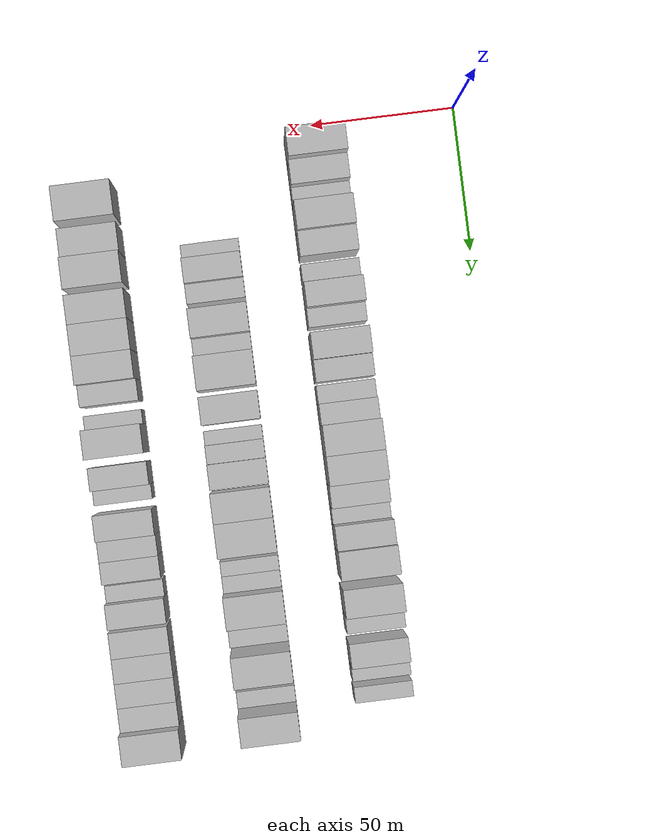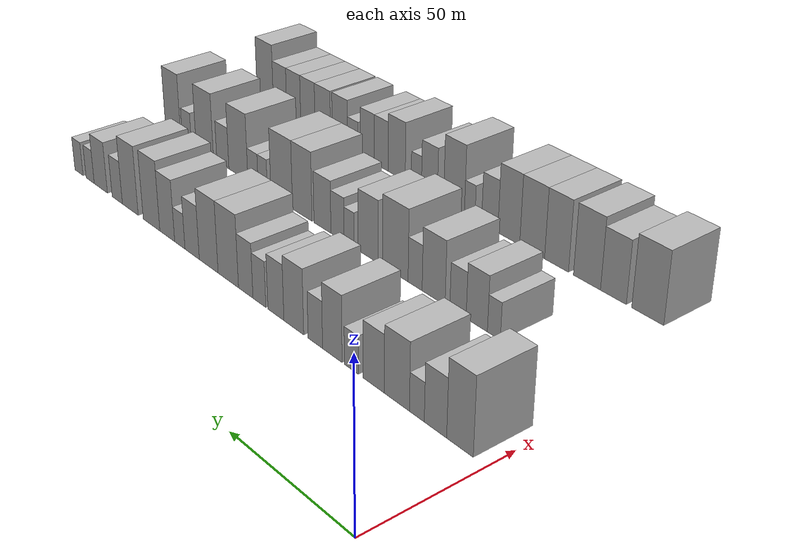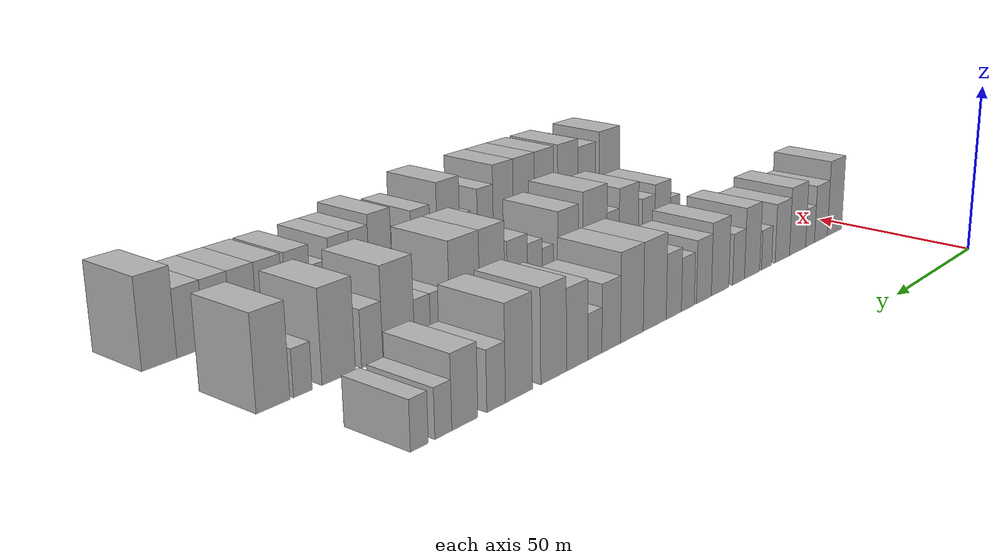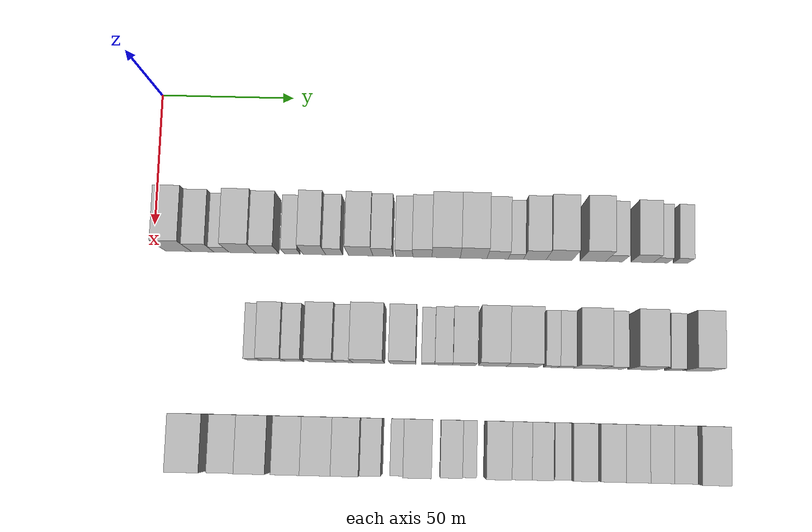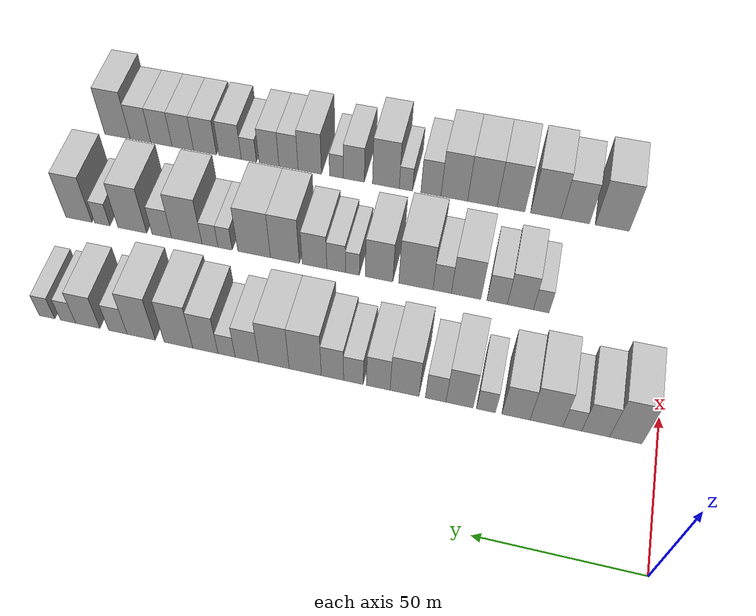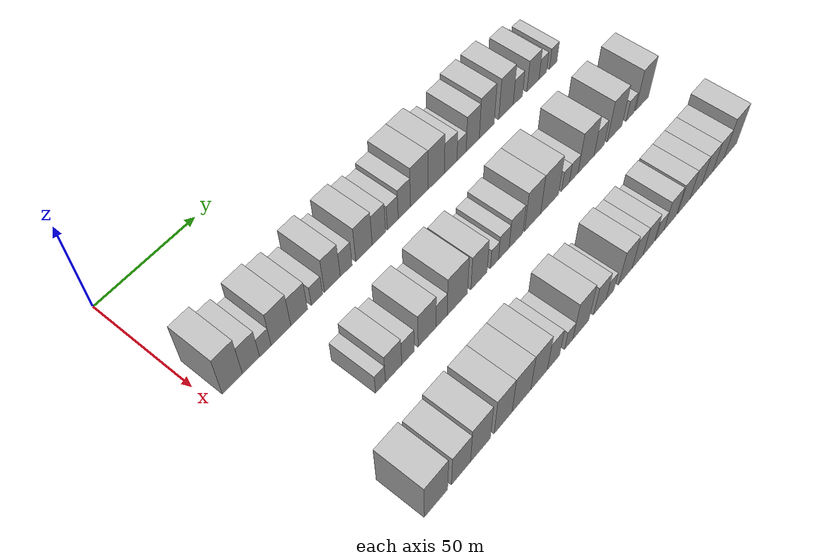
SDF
<sdf version="1.6">
 <world name="default">
  <model name="building_45">
   <static>1</static>
   <pose>50.0000 9.4285 0 0.000000 0.000000 0.000000</pose>
   <link name="link">
    <pose>0 0 12.00 0 0 0</pose>
    <collision name="collision"><geometry><box><size>20.0000 9.6860 24.0000</size></box></geometry></collision>
    <visual name="visual">
     <cast_shadows>0</cast_shadows>
     <geometry><box><size>20.0000 9.6860 24.0000</size></box></geometry>
     <material>
      <script>
       <uri>model://HANNAS_wall/materials/scripts</uri>
       <uri>model://HANNAS_wall/materials/textures</uri>
       <name>vrc/HANNAS_wall</name>
      </script>
     </material>
    </visual>
   </link>
  </model>
  <model name="building_46">
   <static>1</static>
   <pose>50.0000 18.4736 0 0.000000 0.000000 0.000000</pose>
   <link name="link">
    <pose>0 0 9.00 0 0 0</pose>
    <collision name="collision"><geometry><box><size>20.0000 8.4042 18.0000</size></box></geometry></collision>
    <visual name="visual">
     <cast_shadows>0</cast_shadows>
     <geometry><box><size>20.0000 8.4042 18.0000</size></box></geometry>
     <material>
      <script>
       <uri>model://HANNAS_wall/materials/scripts</uri>
       <uri>model://HANNAS_wall/materials/textures</uri>
       <name>vrc/HANNAS_wall</name>
      </script>
     </material>
    </visual>
   </link>
  </model>
  <model name="building_47">
   <static>1</static>
   <pose>50.0000 25.5495 0 0.000000 0.000000 0.000000</pose>
   <link name="link">
    <pose>0 0 6.00 0 0 0</pose>
    <collision name="collision"><geometry><box><size>20.0000 5.7476 12.0000</size></box></geometry></collision>
    <visual name="visual">
     <cast_shadows>0</cast_shadows>
     <geometry><box><size>20.0000 5.7476 12.0000</size></box></geometry>
     <material>
      <script>
       <uri>model://HANNAS_wall/materials/scripts</uri>
       <uri>model://HANNAS_wall/materials/textures</uri>
       <name>vrc/HANNAS_wall</name>
      </script>
     </material>
    </visual>
   </link>
  </model>
  <model name="building_48">
   <static>1</static>
   <pose>50.0000 33.4192 0 0.000000 0.000000 0.000000</pose>
   <link name="link">
    <pose>0 0 10.50 0 0 0</pose>
    <collision name="collision"><geometry><box><size>20.0000 9.9916 21.0000</size></box></geometry></collision>
    <visual name="visual">
     <cast_shadows>0</cast_shadows>
     <geometry><box><size>20.0000 9.9916 21.0000</size></box></geometry>
     <material>
      <script>
       <uri>model://HANNAS_wall/materials/scripts</uri>
       <uri>model://HANNAS_wall/materials/textures</uri>
       <name>vrc/HANNAS_wall</name>
      </script>
     </material>
    </visual>
   </link>
  </model>
  <model name="building_49">
   <static>1</static>
   <pose>50.0000 42.7429 0 0.000000 0.000000 0.000000</pose>
   <link name="link">
    <pose>0 0 9.00 0 0 0</pose>
    <collision name="collision"><geometry><box><size>20.0000 8.6559 18.0000</size></box></geometry></collision>
    <visual name="visual">
     <cast_shadows>0</cast_shadows>
     <geometry><box><size>20.0000 8.6559 18.0000</size></box></geometry>
     <material>
      <script>
       <uri>model://HANNAS_wall/materials/scripts</uri>
       <uri>model://HANNAS_wall/materials/textures</uri>
       <name>vrc/HANNAS_wall</name>
      </script>
     </material>
    </visual>
   </link>
  </model>
  <model name="building_50">
   <static>1</static>
   <pose>50.0000 52.0302 0 0.000000 0.000000 0.000000</pose>
   <link name="link">
    <pose>0 0 6.00 0 0 0</pose>
    <collision name="collision"><geometry><box><size>20.0000 5.9188 12.0000</size></box></geometry></collision>
    <visual name="visual">
     <cast_shadows>0</cast_shadows>
     <geometry><box><size>20.0000 5.9188 12.0000</size></box></geometry>
     <material>
      <script>
       <uri>model://HANNAS_wall/materials/scripts</uri>
       <uri>model://HANNAS_wall/materials/textures</uri>
       <name>vrc/HANNAS_wall</name>
      </script>
     </material>
    </visual>
   </link>
  </model>
  <model name="building_51">
   <static>1</static>
   <pose>50.0000 60.2455 0 0.000000 0.000000 0.000000</pose>
   <link name="link">
    <pose>0 0 10.50 0 0 0</pose>
    <collision name="collision"><geometry><box><size>20.0000 8.5118 21.0000</size></box></geometry></collision>
    <visual name="visual">
     <cast_shadows>0</cast_shadows>
     <geometry><box><size>20.0000 8.5118 21.0000</size></box></geometry>
     <material>
      <script>
       <uri>model://HANNAS_wall/materials/scripts</uri>
       <uri>model://HANNAS_wall/materials/textures</uri>
       <name>vrc/HANNAS_wall</name>
      </script>
     </material>
    </visual>
   </link>
  </model>
  <model name="building_52">
   <static>1</static>
   <pose>50.0000 67.7341 0 0.000000 0.000000 0.000000</pose>
   <link name="link">
    <pose>0 0 7.50 0 0 0</pose>
    <collision name="collision"><geometry><box><size>20.0000 6.4653 15.0000</size></box></geometry></collision>
    <visual name="visual">
     <cast_shadows>0</cast_shadows>
     <geometry><box><size>20.0000 6.4653 15.0000</size></box></geometry>
     <material>
      <script>
       <uri>model://HANNAS_wall/materials/scripts</uri>
       <uri>model://HANNAS_wall/materials/textures</uri>
       <name>vrc/HANNAS_wall</name>
      </script>
     </material>
    </visual>
   </link>
  </model>
  <model name="building_53">
   <static>1</static>
   <pose>50.0000 77.5523 0 0.000000 0.000000 0.000000</pose>
   <link name="link">
    <pose>0 0 10.50 0 0 0</pose>
    <collision name="collision"><geometry><box><size>20.0000 9.1711 21.0000</size></box></geometry></collision>
    <visual name="visual">
     <cast_shadows>0</cast_shadows>
     <geometry><box><size>20.0000 9.1711 21.0000</size></box></geometry>
     <material>
      <script>
       <uri>model://HANNAS_wall/materials/scripts</uri>
       <uri>model://HANNAS_wall/materials/textures</uri>
       <name>vrc/HANNAS_wall</name>
      </script>
     </material>
    </visual>
   </link>
  </model>
  <model name="building_54">
   <static>1</static>
   <pose>50.0000 85.9416 0 0.000000 0.000000 0.000000</pose>
   <link name="link">
    <pose>0 0 9.00 0 0 0</pose>
    <collision name="collision"><geometry><box><size>20.0000 7.6076 18.0000</size></box></geometry></collision>
    <visual name="visual">
     <cast_shadows>0</cast_shadows>
     <geometry><box><size>20.0000 7.6076 18.0000</size></box></geometry>
     <material>
      <script>
       <uri>model://HANNAS_wall/materials/scripts</uri>
       <uri>model://HANNAS_wall/materials/textures</uri>
       <name>vrc/HANNAS_wall</name>
      </script>
     </material>
    </visual>
   </link>
  </model>
  <model name="building_55">
   <static>1</static>
   <pose>50.0000 93.8959 0 0.000000 0.000000 0.000000</pose>
   <link name="link">
    <pose>0 0 7.50 0 0 0</pose>
    <collision name="collision"><geometry><box><size>20.0000 6.3009 15.0000</size></box></geometry></collision>
    <visual name="visual">
     <cast_shadows>0</cast_shadows>
     <geometry><box><size>20.0000 6.3009 15.0000</size></box></geometry>
     <material>
      <script>
       <uri>model://HANNAS_wall/materials/scripts</uri>
       <uri>model://HANNAS_wall/materials/textures</uri>
       <name>vrc/HANNAS_wall</name>
      </script>
     </material>
    </visual>
   </link>
  </model>
  <model name="building_56">
   <static>1</static>
   <pose>50.0000 100.6572 0 0.000000 0.000000 0.000000</pose>
   <link name="link">
    <pose>0 0 9.00 0 0 0</pose>
    <collision name="collision"><geometry><box><size>20.0000 7.2218 18.0000</size></box></geometry></collision>
    <visual name="visual">
     <cast_shadows>0</cast_shadows>
     <geometry><box><size>20.0000 7.2218 18.0000</size></box></geometry>
     <material>
      <script>
       <uri>model://HANNAS_wall/materials/scripts</uri>
       <uri>model://HANNAS_wall/materials/textures</uri>
       <name>vrc/HANNAS_wall</name>
      </script>
     </material>
    </visual>
   </link>
  </model>
  <model name="building_57">
   <static>1</static>
   <pose>50.0000 109.5075 0 0.000000 0.000000 0.000000</pose>
   <link name="link">
    <pose>0 0 12.00 0 0 0</pose>
    <collision name="collision"><geometry><box><size>20.0000 10.4787 24.0000</size></box></geometry></collision>
    <visual name="visual">
     <cast_shadows>0</cast_shadows>
     <geometry><box><size>20.0000 10.4787 24.0000</size></box></geometry>
     <material>
      <script>
       <uri>model://HANNAS_wall/materials/scripts</uri>
       <uri>model://HANNAS_wall/materials/textures</uri>
       <name>vrc/HANNAS_wall</name>
      </script>
     </material>
    </visual>
   </link>
  </model>
  <model name="building_58">
   <static>1</static>
   <pose>50.0000 119.7320 0 0.000000 0.000000 0.000000</pose>
   <link name="link">
    <pose>0 0 12.00 0 0 0</pose>
    <collision name="collision"><geometry><box><size>20.0000 9.9702 24.0000</size></box></geometry></collision>
    <visual name="visual">
     <cast_shadows>0</cast_shadows>
     <geometry><box><size>20.0000 9.9702 24.0000</size></box></geometry>
     <material>
      <script>
       <uri>model://HANNAS_wall/materials/scripts</uri>
       <uri>model://HANNAS_wall/materials/textures</uri>
       <name>vrc/HANNAS_wall</name>
      </script>
     </material>
    </visual>
   </link>
  </model>
  <model name="building_59">
   <static>1</static>
   <pose>50.0000 128.6351 0 0.000000 0.000000 0.000000</pose>
   <link name="link">
    <pose>0 0 9.00 0 0 0</pose>
    <collision name="collision"><geometry><box><size>20.0000 7.8361 18.0000</size></box></geometry></collision>
    <visual name="visual">
     <cast_shadows>0</cast_shadows>
     <geometry><box><size>20.0000 7.8361 18.0000</size></box></geometry>
     <material>
      <script>
       <uri>model://HANNAS_wall/materials/scripts</uri>
       <uri>model://HANNAS_wall/materials/textures</uri>
       <name>vrc/HANNAS_wall</name>
      </script>
     </material>
    </visual>
   </link>
  </model>
  <model name="building_60">
   <static>1</static>
   <pose>50.0000 135.4179 0 0.000000 0.000000 0.000000</pose>
   <link name="link">
    <pose>0 0 6.00 0 0 0</pose>
    <collision name="collision"><geometry><box><size>20.0000 5.7295 12.0000</size></box></geometry></collision>
    <visual name="visual">
     <cast_shadows>0</cast_shadows>
     <geometry><box><size>20.0000 5.7295 12.0000</size></box></geometry>
     <material>
      <script>
       <uri>model://HANNAS_wall/materials/scripts</uri>
       <uri>model://HANNAS_wall/materials/textures</uri>
       <name>vrc/HANNAS_wall</name>
      </script>
     </material>
    </visual>
   </link>
  </model>
  <model name="building_61">
   <static>1</static>
   <pose>50.0000 142.5011 0 0.000000 0.000000 0.000000</pose>
   <link name="link">
    <pose>0 0 10.50 0 0 0</pose>
    <collision name="collision"><geometry><box><size>20.0000 8.4368 21.0000</size></box></geometry></collision>
    <visual name="visual">
     <cast_shadows>0</cast_shadows>
     <geometry><box><size>20.0000 8.4368 21.0000</size></box></geometry>
     <material>
      <script>
       <uri>model://HANNAS_wall/materials/scripts</uri>
       <uri>model://HANNAS_wall/materials/textures</uri>
       <name>vrc/HANNAS_wall</name>
      </script>
     </material>
    </visual>
   </link>
  </model>
  <model name="building_62">
   <static>1</static>
   <pose>50.0000 151.5819 0 0.000000 0.000000 0.000000</pose>
   <link name="link">
    <pose>0 0 12.00 0 0 0</pose>
    <collision name="collision"><geometry><box><size>20.0000 9.7249 24.0000</size></box></geometry></collision>
    <visual name="visual">
     <cast_shadows>0</cast_shadows>
     <geometry><box><size>20.0000 9.7249 24.0000</size></box></geometry>
     <material>
      <script>
       <uri>model://HANNAS_wall/materials/scripts</uri>
       <uri>model://HANNAS_wall/materials/textures</uri>
       <name>vrc/HANNAS_wall</name>
      </script>
     </material>
    </visual>
   </link>
  </model>
  <model name="building_63">
   <static>1</static>
   <pose>50.0000 164.2537 0 0.000000 0.000000 0.000000</pose>
   <link name="link">
    <pose>0 0 12.00 0 0 0</pose>
    <collision name="collision"><geometry><box><size>20.0000 9.6187 24.0000</size></box></geometry></collision>
    <visual name="visual">
     <cast_shadows>0</cast_shadows>
     <geometry><box><size>20.0000 9.6187 24.0000</size></box></geometry>
     <material>
      <script>
       <uri>model://HANNAS_wall/materials/scripts</uri>
       <uri>model://HANNAS_wall/materials/textures</uri>
       <name>vrc/HANNAS_wall</name>
      </script>
     </material>
    </visual>
   </link>
  </model>
  <model name="building_64">
   <static>1</static>
   <pose>50.0000 172.2444 0 0.000000 0.000000 0.000000</pose>
   <link name="link">
    <pose>0 0 7.50 0 0 0</pose>
    <collision name="collision"><geometry><box><size>20.0000 6.3627 15.0000</size></box></geometry></collision>
    <visual name="visual">
     <cast_shadows>0</cast_shadows>
     <geometry><box><size>20.0000 6.3627 15.0000</size></box></geometry>
     <material>
      <script>
       <uri>model://HANNAS_wall/materials/scripts</uri>
       <uri>model://HANNAS_wall/materials/textures</uri>
       <name>vrc/HANNAS_wall</name>
      </script>
     </material>
    </visual>
   </link>
  </model>
  <model name="building_65">
   <static>1</static>
   <pose>50.0000 182.6394 0 0.000000 0.000000 0.000000</pose>
   <link name="link">
    <pose>0 0 9.00 0 0 0</pose>
    <collision name="collision"><geometry><box><size>20.0000 8.4272 18.0000</size></box></geometry></collision>
    <visual name="visual">
     <cast_shadows>0</cast_shadows>
     <geometry><box><size>20.0000 8.4272 18.0000</size></box></geometry>
     <material>
      <script>
       <uri>model://HANNAS_wall/materials/scripts</uri>
       <uri>model://HANNAS_wall/materials/textures</uri>
       <name>vrc/HANNAS_wall</name>
      </script>
     </material>
    </visual>
   </link>
  </model>
  <model name="building_66">
   <static>1</static>
   <pose>50.0000 189.5086 0 0.000000 0.000000 0.000000</pose>
   <link name="link">
    <pose>0 0 6.00 0 0 0</pose>
    <collision name="collision"><geometry><box><size>20.0000 5.3113 12.0000</size></box></geometry></collision>
    <visual name="visual">
     <cast_shadows>0</cast_shadows>
     <geometry><box><size>20.0000 5.3113 12.0000</size></box></geometry>
     <material>
      <script>
       <uri>model://HANNAS_wall/materials/scripts</uri>
       <uri>model://HANNAS_wall/materials/textures</uri>
       <name>vrc/HANNAS_wall</name>
      </script>
     </material>
    </visual>
   </link>
  </model>
  <model name="building_67">
   <static>1</static>
   <pose>50.0000 196.8593 0 0.000000 0.000000 0.000000</pose>
   <link name="link">
    <pose>0 0 6.00 0 0 0</pose>
    <collision name="collision"><geometry><box><size>20.0000 5.3899 12.0000</size></box></geometry></collision>
    <visual name="visual">
     <cast_shadows>0</cast_shadows>
     <geometry><box><size>20.0000 5.3899 12.0000</size></box></geometry>
     <material>
      <script>
       <uri>model://HANNAS_wall/materials/scripts</uri>
       <uri>model://HANNAS_wall/materials/textures</uri>
       <name>vrc/HANNAS_wall</name>
      </script>
     </material>
    </visual>
   </link>
  </model>
  <model name="building_131">
   <static>1</static>
   <pose>90.0000 39.9791 0 0.000000 0.000000 0.000000</pose>
   <link name="link">
    <pose>0 0 6.00 0 0 0</pose>
    <collision name="collision"><geometry><box><size>20.0000 5.1686 12.0000</size></box></geometry></collision>
    <visual name="visual">
     <cast_shadows>0</cast_shadows>
     <geometry><box><size>20.0000 5.1686 12.0000</size></box></geometry>
     <material>
      <script>
       <uri>model://HANNAS_wall/materials/scripts</uri>
       <uri>model://HANNAS_wall/materials/textures</uri>
       <name>vrc/HANNAS_wall</name>
      </script>
     </material>
    </visual>
   </link>
  </model>
  <model name="building_132">
   <static>1</static>
   <pose>90.0000 46.8802 0 0.000000 0.000000 0.000000</pose>
   <link name="link">
    <pose>0 0 9.00 0 0 0</pose>
    <collision name="collision"><geometry><box><size>20.0000 8.6337 18.0000</size></box></geometry></collision>
    <visual name="visual">
     <cast_shadows>0</cast_shadows>
     <geometry><box><size>20.0000 8.6337 18.0000</size></box></geometry>
     <material>
      <script>
       <uri>model://HANNAS_wall/materials/scripts</uri>
       <uri>model://HANNAS_wall/materials/textures</uri>
       <name>vrc/HANNAS_wall</name>
      </script>
     </material>
    </visual>
   </link>
  </model>
  <model name="building_133">
   <static>1</static>
   <pose>90.0000 54.6035 0 0.000000 0.000000 0.000000</pose>
   <link name="link">
    <pose>0 0 7.50 0 0 0</pose>
    <collision name="collision"><geometry><box><size>20.0000 6.8129 15.0000</size></box></geometry></collision>
    <visual name="visual">
     <cast_shadows>0</cast_shadows>
     <geometry><box><size>20.0000 6.8129 15.0000</size></box></geometry>
     <material>
      <script>
       <uri>model://HANNAS_wall/materials/scripts</uri>
       <uri>model://HANNAS_wall/materials/textures</uri>
       <name>vrc/HANNAS_wall</name>
      </script>
     </material>
    </visual>
   </link>
  </model>
  <model name="building_134">
   <static>1</static>
   <pose>90.0000 64.9689 0 0.000000 0.000000 0.000000</pose>
   <link name="link">
    <pose>0 0 10.50 0 0 0</pose>
    <collision name="collision"><geometry><box><size>20.0000 9.9180 21.0000</size></box></geometry></collision>
    <visual name="visual">
     <cast_shadows>0</cast_shadows>
     <geometry><box><size>20.0000 9.9180 21.0000</size></box></geometry>
     <material>
      <script>
       <uri>model://HANNAS_wall/materials/scripts</uri>
       <uri>model://HANNAS_wall/materials/textures</uri>
       <name>vrc/HANNAS_wall</name>
      </script>
     </material>
    </visual>
   </link>
  </model>
  <model name="building_135">
   <static>1</static>
   <pose>90.0000 73.0386 0 0.000000 0.000000 0.000000</pose>
   <link name="link">
    <pose>0 0 7.50 0 0 0</pose>
    <collision name="collision"><geometry><box><size>20.0000 6.2214 15.0000</size></box></geometry></collision>
    <visual name="visual">
     <cast_shadows>0</cast_shadows>
     <geometry><box><size>20.0000 6.2214 15.0000</size></box></geometry>
     <material>
      <script>
       <uri>model://HANNAS_wall/materials/scripts</uri>
       <uri>model://HANNAS_wall/materials/textures</uri>
       <name>vrc/HANNAS_wall</name>
      </script>
     </material>
    </visual>
   </link>
  </model>
  <model name="building_136">
   <static>1</static>
   <pose>90.0000 81.9884 0 0.000000 0.000000 0.000000</pose>
   <link name="link">
    <pose>0 0 12.00 0 0 0</pose>
    <collision name="collision"><geometry><box><size>20.0000 11.6782 24.0000</size></box></geometry></collision>
    <visual name="visual">
     <cast_shadows>0</cast_shadows>
     <geometry><box><size>20.0000 11.6782 24.0000</size></box></geometry>
     <material>
      <script>
       <uri>model://HANNAS_wall/materials/scripts</uri>
       <uri>model://HANNAS_wall/materials/textures</uri>
       <name>vrc/HANNAS_wall</name>
      </script>
     </material>
    </visual>
   </link>
  </model>
  <model name="building_137">
   <static>1</static>
   <pose>90.0000 94.5792 0 0.000000 0.000000 0.000000</pose>
   <link name="link">
    <pose>0 0 10.50 0 0 0</pose>
    <collision name="collision"><geometry><box><size>20.0000 9.5033 21.0000</size></box></geometry></collision>
    <visual name="visual">
     <cast_shadows>0</cast_shadows>
     <geometry><box><size>20.0000 9.5033 21.0000</size></box></geometry>
     <material>
      <script>
       <uri>model://HANNAS_wall/materials/scripts</uri>
       <uri>model://HANNAS_wall/materials/textures</uri>
       <name>vrc/HANNAS_wall</name>
      </script>
     </material>
    </visual>
   </link>
  </model>
  <model name="building_138">
   <static>1</static>
   <pose>90.0000 103.7578 0 0.000000 0.000000 0.000000</pose>
   <link name="link">
    <pose>0 0 6.00 0 0 0</pose>
    <collision name="collision"><geometry><box><size>20.0000 4.8538 12.0000</size></box></geometry></collision>
    <visual name="visual">
     <cast_shadows>0</cast_shadows>
     <geometry><box><size>20.0000 4.8538 12.0000</size></box></geometry>
     <material>
      <script>
       <uri>model://HANNAS_wall/materials/scripts</uri>
       <uri>model://HANNAS_wall/materials/textures</uri>
       <name>vrc/HANNAS_wall</name>
      </script>
     </material>
    </visual>
   </link>
  </model>
  <model name="building_139">
   <static>1</static>
   <pose>90.0000 109.4196 0 0.000000 0.000000 0.000000</pose>
   <link name="link">
    <pose>0 0 7.50 0 0 0</pose>
    <collision name="collision"><geometry><box><size>20.0000 6.4697 15.0000</size></box></geometry></collision>
    <visual name="visual">
     <cast_shadows>0</cast_shadows>
     <geometry><box><size>20.0000 6.4697 15.0000</size></box></geometry>
     <material>
      <script>
       <uri>model://HANNAS_wall/materials/scripts</uri>
       <uri>model://HANNAS_wall/materials/textures</uri>
       <name>vrc/HANNAS_wall</name>
      </script>
     </material>
    </visual>
   </link>
  </model>
  <model name="building_140">
   <static>1</static>
   <pose>90.0000 116.9494 0 0.000000 0.000000 0.000000</pose>
   <link name="link">
    <pose>0 0 9.00 0 0 0</pose>
    <collision name="collision"><geometry><box><size>20.0000 8.5899 18.0000</size></box></geometry></collision>
    <visual name="visual">
     <cast_shadows>0</cast_shadows>
     <geometry><box><size>20.0000 8.5899 18.0000</size></box></geometry>
     <material>
      <script>
       <uri>model://HANNAS_wall/materials/scripts</uri>
       <uri>model://HANNAS_wall/materials/textures</uri>
       <name>vrc/HANNAS_wall</name>
      </script>
     </material>
    </visual>
   </link>
  </model>
  <model name="building_141">
   <static>1</static>
   <pose>90.0000 127.3494 0 0.000000 0.000000 0.000000</pose>
   <link name="link">
    <pose>0 0 12.00 0 0 0</pose>
    <collision name="collision"><geometry><box><size>20.0000 10.2101 24.0000</size></box></geometry></collision>
    <visual name="visual">
     <cast_shadows>0</cast_shadows>
     <geometry><box><size>20.0000 10.2101 24.0000</size></box></geometry>
     <material>
      <script>
       <uri>model://HANNAS_wall/materials/scripts</uri>
       <uri>model://HANNAS_wall/materials/textures</uri>
       <name>vrc/HANNAS_wall</name>
      </script>
     </material>
    </visual>
   </link>
  </model>
  <model name="building_142">
   <static>1</static>
   <pose>90.0000 138.2736 0 0.000000 0.000000 0.000000</pose>
   <link name="link">
    <pose>0 0 12.00 0 0 0</pose>
    <collision name="collision"><geometry><box><size>20.0000 11.6382 24.0000</size></box></geometry></collision>
    <visual name="visual">
     <cast_shadows>0</cast_shadows>
     <geometry><box><size>20.0000 11.6382 24.0000</size></box></geometry>
     <material>
      <script>
       <uri>model://HANNAS_wall/materials/scripts</uri>
       <uri>model://HANNAS_wall/materials/textures</uri>
       <name>vrc/HANNAS_wall</name>
      </script>
     </material>
    </visual>
   </link>
  </model>
  <model name="building_143">
   <static>1</static>
   <pose>90.0000 148.6473 0 0.000000 0.000000 0.000000</pose>
   <link name="link">
    <pose>0 0 6.00 0 0 0</pose>
    <collision name="collision"><geometry><box><size>20.0000 5.1093 12.0000</size></box></geometry></collision>
    <visual name="visual">
     <cast_shadows>0</cast_shadows>
     <geometry><box><size>20.0000 5.1093 12.0000</size></box></geometry>
     <material>
      <script>
       <uri>model://HANNAS_wall/materials/scripts</uri>
       <uri>model://HANNAS_wall/materials/textures</uri>
       <name>vrc/HANNAS_wall</name>
      </script>
     </material>
    </visual>
   </link>
  </model>
  <model name="building_144">
   <static>1</static>
   <pose>90.0000 154.0978 0 0.000000 0.000000 0.000000</pose>
   <link name="link">
    <pose>0 0 6.00 0 0 0</pose>
    <collision name="collision"><geometry><box><size>20.0000 5.7917 12.0000</size></box></geometry></collision>
    <visual name="visual">
     <cast_shadows>0</cast_shadows>
     <geometry><box><size>20.0000 5.7917 12.0000</size></box></geometry>
     <material>
      <script>
       <uri>model://HANNAS_wall/materials/scripts</uri>
       <uri>model://HANNAS_wall/materials/textures</uri>
       <name>vrc/HANNAS_wall</name>
      </script>
     </material>
    </visual>
   </link>
  </model>
  <model name="building_145">
   <static>1</static>
   <pose>90.0000 162.5003 0 0.000000 0.000000 0.000000</pose>
   <link name="link">
    <pose>0 0 12.00 0 0 0</pose>
    <collision name="collision"><geometry><box><size>20.0000 11.0132 24.0000</size></box></geometry></collision>
    <visual name="visual">
     <cast_shadows>0</cast_shadows>
     <geometry><box><size>20.0000 11.0132 24.0000</size></box></geometry>
     <material>
      <script>
       <uri>model://HANNAS_wall/materials/scripts</uri>
       <uri>model://HANNAS_wall/materials/textures</uri>
       <name>vrc/HANNAS_wall</name>
      </script>
     </material>
    </visual>
   </link>
  </model>
  <model name="building_146">
   <static>1</static>
   <pose>90.0000 171.5752 0 0.000000 0.000000 0.000000</pose>
   <link name="link">
    <pose>0 0 7.50 0 0 0</pose>
    <collision name="collision"><geometry><box><size>20.0000 7.1367 15.0000</size></box></geometry></collision>
    <visual name="visual">
     <cast_shadows>0</cast_shadows>
     <geometry><box><size>20.0000 7.1367 15.0000</size></box></geometry>
     <material>
      <script>
       <uri>model://HANNAS_wall/materials/scripts</uri>
       <uri>model://HANNAS_wall/materials/textures</uri>
       <name>vrc/HANNAS_wall</name>
      </script>
     </material>
    </visual>
   </link>
  </model>
  <model name="building_147">
   <static>1</static>
   <pose>90.0000 182.4358 0 0.000000 0.000000 0.000000</pose>
   <link name="link">
    <pose>0 0 12.00 0 0 0</pose>
    <collision name="collision"><geometry><box><size>20.0000 10.5844 24.0000</size></box></geometry></collision>
    <visual name="visual">
     <cast_shadows>0</cast_shadows>
     <geometry><box><size>20.0000 10.5844 24.0000</size></box></geometry>
     <material>
      <script>
       <uri>model://HANNAS_wall/materials/scripts</uri>
       <uri>model://HANNAS_wall/materials/textures</uri>
       <name>vrc/HANNAS_wall</name>
      </script>
     </material>
    </visual>
   </link>
  </model>
  <model name="building_148">
   <static>1</static>
   <pose>90.0000 193.5626 0 0.000000 0.000000 0.000000</pose>
   <link name="link">
    <pose>0 0 6.00 0 0 0</pose>
    <collision name="collision"><geometry><box><size>20.0000 5.6691 12.0000</size></box></geometry></collision>
    <visual name="visual">
     <cast_shadows>0</cast_shadows>
     <geometry><box><size>20.0000 5.6691 12.0000</size></box></geometry>
     <material>
      <script>
       <uri>model://HANNAS_wall/materials/scripts</uri>
       <uri>model://HANNAS_wall/materials/textures</uri>
       <name>vrc/HANNAS_wall</name>
      </script>
     </material>
    </visual>
   </link>
  </model>
  <model name="building_149">
   <static>1</static>
   <pose>90.0000 202.2753 0 0.000000 0.000000 0.000000</pose>
   <link name="link">
    <pose>0 0 12.00 0 0 0</pose>
    <collision name="collision"><geometry><box><size>20.0000 9.7562 24.0000</size></box></geometry></collision>
    <visual name="visual">
     <cast_shadows>0</cast_shadows>
     <geometry><box><size>20.0000 9.7562 24.0000</size></box></geometry>
     <material>
      <script>
       <uri>model://HANNAS_wall/materials/scripts</uri>
       <uri>model://HANNAS_wall/materials/textures</uri>
       <name>vrc/HANNAS_wall</name>
      </script>
     </material>
    </visual>
   </link>
  </model>
  <model name="building_210">
   <static>1</static>
   <pose>130.0000 20.2321 0 0.000000 0.000000 0.000000</pose>
   <link name="link">
    <pose>0 0 12.00 0 0 0</pose>
    <collision name="collision"><geometry><box><size>20.0000 11.8071 24.0000</size></box></geometry></collision>
    <visual name="visual">
     <cast_shadows>0</cast_shadows>
     <geometry><box><size>20.0000 11.8071 24.0000</size></box></geometry>
     <material>
      <script>
       <uri>model://HANNAS_wall/materials/scripts</uri>
       <uri>model://HANNAS_wall/materials/textures</uri>
       <name>vrc/HANNAS_wall</name>
      </script>
     </material>
    </visual>
   </link>
  </model>
  <model name="building_211">
   <static>1</static>
   <pose>130.0000 33.1049 0 0.000000 0.000000 0.000000</pose>
   <link name="link">
    <pose>0 0 10.50 0 0 0</pose>
    <collision name="collision"><geometry><box><size>20.0000 9.9384 21.0000</size></box></geometry></collision>
    <visual name="visual">
     <cast_shadows>0</cast_shadows>
     <geometry><box><size>20.0000 9.9384 21.0000</size></box></geometry>
     <material>
      <script>
       <uri>model://HANNAS_wall/materials/scripts</uri>
       <uri>model://HANNAS_wall/materials/textures</uri>
       <name>vrc/HANNAS_wall</name>
      </script>
     </material>
    </visual>
   </link>
  </model>
  <model name="building_212">
   <static>1</static>
   <pose>130.0000 43.4321 0 0.000000 0.000000 0.000000</pose>
   <link name="link">
    <pose>0 0 12.00 0 0 0</pose>
    <collision name="collision"><geometry><box><size>20.0000 10.7160 24.0000</size></box></geometry></collision>
    <visual name="visual">
     <cast_shadows>0</cast_shadows>
     <geometry><box><size>20.0000 10.7160 24.0000</size></box></geometry>
     <material>
      <script>
       <uri>model://HANNAS_wall/materials/scripts</uri>
       <uri>model://HANNAS_wall/materials/textures</uri>
       <name>vrc/HANNAS_wall</name>
      </script>
     </material>
    </visual>
   </link>
  </model>
  <model name="building_213">
   <static>1</static>
   <pose>130.0000 55.7275 0 0.000000 0.000000 0.000000</pose>
   <link name="link">
    <pose>0 0 12.00 0 0 0</pose>
    <collision name="collision"><geometry><box><size>20.0000 9.8747 24.0000</size></box></geometry></collision>
    <visual name="visual">
     <cast_shadows>0</cast_shadows>
     <geometry><box><size>20.0000 9.8747 24.0000</size></box></geometry>
     <material>
      <script>
       <uri>model://HANNAS_wall/materials/scripts</uri>
       <uri>model://HANNAS_wall/materials/textures</uri>
       <name>vrc/HANNAS_wall</name>
      </script>
     </material>
    </visual>
   </link>
  </model>
  <model name="building_214">
   <static>1</static>
   <pose>130.0000 65.9517 0 0.000000 0.000000 0.000000</pose>
   <link name="link">
    <pose>0 0 12.00 0 0 0</pose>
    <collision name="collision"><geometry><box><size>20.0000 10.5737 24.0000</size></box></geometry></collision>
    <visual name="visual">
     <cast_shadows>0</cast_shadows>
     <geometry><box><size>20.0000 10.5737 24.0000</size></box></geometry>
     <material>
      <script>
       <uri>model://HANNAS_wall/materials/scripts</uri>
       <uri>model://HANNAS_wall/materials/textures</uri>
       <name>vrc/HANNAS_wall</name>
      </script>
     </material>
    </visual>
   </link>
  </model>
  <model name="building_215">
   <static>1</static>
   <pose>130.0000 76.0417 0 0.000000 0.000000 0.000000</pose>
   <link name="link">
    <pose>0 0 12.00 0 0 0</pose>
    <collision name="collision"><geometry><box><size>20.0000 9.6062 24.0000</size></box></geometry></collision>
    <visual name="visual">
     <cast_shadows>0</cast_shadows>
     <geometry><box><size>20.0000 9.6062 24.0000</size></box></geometry>
     <material>
      <script>
       <uri>model://HANNAS_wall/materials/scripts</uri>
       <uri>model://HANNAS_wall/materials/textures</uri>
       <name>vrc/HANNAS_wall</name>
      </script>
     </material>
    </visual>
   </link>
  </model>
  <model name="building_216">
   <static>1</static>
   <pose>130.0000 84.5061 0 0.000000 0.000000 0.000000</pose>
   <link name="link">
    <pose>0 0 9.00 0 0 0</pose>
    <collision name="collision"><geometry><box><size>20.0000 7.3226 18.0000</size></box></geometry></collision>
    <visual name="visual">
     <cast_shadows>0</cast_shadows>
     <geometry><box><size>20.0000 7.3226 18.0000</size></box></geometry>
     <material>
      <script>
       <uri>model://HANNAS_wall/materials/scripts</uri>
       <uri>model://HANNAS_wall/materials/textures</uri>
       <name>vrc/HANNAS_wall</name>
      </script>
     </material>
    </visual>
   </link>
  </model>
  <model name="building_217">
   <static>1</static>
   <pose>130.0000 93.6134 0 0.000000 0.000000 0.000000</pose>
   <link name="link">
    <pose>0 0 6.00 0 0 0</pose>
    <collision name="collision"><geometry><box><size>20.0000 4.8920 12.0000</size></box></geometry></collision>
    <visual name="visual">
     <cast_shadows>0</cast_shadows>
     <geometry><box><size>20.0000 4.8920 12.0000</size></box></geometry>
     <material>
      <script>
       <uri>model://HANNAS_wall/materials/scripts</uri>
       <uri>model://HANNAS_wall/materials/textures</uri>
       <name>vrc/HANNAS_wall</name>
      </script>
     </material>
    </visual>
   </link>
  </model>
  <model name="building_218">
   <static>1</static>
   <pose>130.0000 100.9722 0 0.000000 0.000000 0.000000</pose>
   <link name="link">
    <pose>0 0 12.00 0 0 0</pose>
    <collision name="collision"><geometry><box><size>20.0000 9.8256 24.0000</size></box></geometry></collision>
    <visual name="visual">
     <cast_shadows>0</cast_shadows>
     <geometry><box><size>20.0000 9.8256 24.0000</size></box></geometry>
     <material>
      <script>
       <uri>model://HANNAS_wall/materials/scripts</uri>
       <uri>model://HANNAS_wall/materials/textures</uri>
       <name>vrc/HANNAS_wall</name>
      </script>
     </material>
    </visual>
   </link>
  </model>
  <model name="building_219">
   <static>1</static>
   <pose>130.0000 112.7924 0 0.000000 0.000000 0.000000</pose>
   <link name="link">
    <pose>0 0 9.00 0 0 0</pose>
    <collision name="collision"><geometry><box><size>20.0000 7.8149 18.0000</size></box></geometry></collision>
    <visual name="visual">
     <cast_shadows>0</cast_shadows>
     <geometry><box><size>20.0000 7.8149 18.0000</size></box></geometry>
     <material>
      <script>
       <uri>model://HANNAS_wall/materials/scripts</uri>
       <uri>model://HANNAS_wall/materials/textures</uri>
       <name>vrc/HANNAS_wall</name>
      </script>
     </material>
    </visual>
   </link>
  </model>
  <model name="building_220">
   <static>1</static>
   <pose>130.0000 119.2530 0 0.000000 0.000000 0.000000</pose>
   <link name="link">
    <pose>0 0 6.00 0 0 0</pose>
    <collision name="collision"><geometry><box><size>20.0000 5.1061 12.0000</size></box></geometry></collision>
    <visual name="visual">
     <cast_shadows>0</cast_shadows>
     <geometry><box><size>20.0000 5.1061 12.0000</size></box></geometry>
     <material>
      <script>
       <uri>model://HANNAS_wall/materials/scripts</uri>
       <uri>model://HANNAS_wall/materials/textures</uri>
       <name>vrc/HANNAS_wall</name>
      </script>
     </material>
    </visual>
   </link>
  </model>
  <model name="building_221">
   <static>1</static>
   <pose>130.0000 129.2095 0 0.000000 0.000000 0.000000</pose>
   <link name="link">
    <pose>0 0 10.50 0 0 0</pose>
    <collision name="collision"><geometry><box><size>20.0000 8.8070 21.0000</size></box></geometry></collision>
    <visual name="visual">
     <cast_shadows>0</cast_shadows>
     <geometry><box><size>20.0000 8.8070 21.0000</size></box></geometry>
     <material>
      <script>
       <uri>model://HANNAS_wall/materials/scripts</uri>
       <uri>model://HANNAS_wall/materials/textures</uri>
       <name>vrc/HANNAS_wall</name>
      </script>
     </material>
    </visual>
   </link>
  </model>
  <model name="building_222">
   <static>1</static>
   <pose>130.0000 137.2256 0 0.000000 0.000000 0.000000</pose>
   <link name="link">
    <pose>0 0 9.00 0 0 0</pose>
    <collision name="collision"><geometry><box><size>20.0000 7.2252 18.0000</size></box></geometry></collision>
    <visual name="visual">
     <cast_shadows>0</cast_shadows>
     <geometry><box><size>20.0000 7.2252 18.0000</size></box></geometry>
     <material>
      <script>
       <uri>model://HANNAS_wall/materials/scripts</uri>
       <uri>model://HANNAS_wall/materials/textures</uri>
       <name>vrc/HANNAS_wall</name>
      </script>
     </material>
    </visual>
   </link>
  </model>
  <model name="building_223">
   <static>1</static>
   <pose>130.0000 144.6204 0 0.000000 0.000000 0.000000</pose>
   <link name="link">
    <pose>0 0 9.00 0 0 0</pose>
    <collision name="collision"><geometry><box><size>20.0000 7.5643 18.0000</size></box></geometry></collision>
    <visual name="visual">
     <cast_shadows>0</cast_shadows>
     <geometry><box><size>20.0000 7.5643 18.0000</size></box></geometry>
     <material>
      <script>
       <uri>model://HANNAS_wall/materials/scripts</uri>
       <uri>model://HANNAS_wall/materials/textures</uri>
       <name>vrc/HANNAS_wall</name>
      </script>
     </material>
    </visual>
   </link>
  </model>
  <model name="building_224">
   <static>1</static>
   <pose>130.0000 152.3014 0 0.000000 0.000000 0.000000</pose>
   <link name="link">
    <pose>0 0 6.00 0 0 0</pose>
    <collision name="collision"><geometry><box><size>20.0000 5.7979 12.0000</size></box></geometry></collision>
    <visual name="visual">
     <cast_shadows>0</cast_shadows>
     <geometry><box><size>20.0000 5.7979 12.0000</size></box></geometry>
     <material>
      <script>
       <uri>model://HANNAS_wall/materials/scripts</uri>
       <uri>model://HANNAS_wall/materials/textures</uri>
       <name>vrc/HANNAS_wall</name>
      </script>
     </material>
    </visual>
   </link>
  </model>
  <model name="building_225">
   <static>1</static>
   <pose>130.0000 159.4690 0 0.000000 0.000000 0.000000</pose>
   <link name="link">
    <pose>0 0 9.00 0 0 0</pose>
    <collision name="collision"><geometry><box><size>20.0000 8.5372 18.0000</size></box></geometry></collision>
    <visual name="visual">
     <cast_shadows>0</cast_shadows>
     <geometry><box><size>20.0000 8.5372 18.0000</size></box></geometry>
     <material>
      <script>
       <uri>model://HANNAS_wall/materials/scripts</uri>
       <uri>model://HANNAS_wall/materials/textures</uri>
       <name>vrc/HANNAS_wall</name>
      </script>
     </material>
    </visual>
   </link>
  </model>
  <model name="building_226">
   <static>1</static>
   <pose>130.0000 169.1472 0 0.000000 0.000000 0.000000</pose>
   <link name="link">
    <pose>0 0 9.00 0 0 0</pose>
    <collision name="collision"><geometry><box><size>20.0000 8.8192 18.0000</size></box></geometry></collision>
    <visual name="visual">
     <cast_shadows>0</cast_shadows>
     <geometry><box><size>20.0000 8.8192 18.0000</size></box></geometry>
     <material>
      <script>
       <uri>model://HANNAS_wall/materials/scripts</uri>
       <uri>model://HANNAS_wall/materials/textures</uri>
       <name>vrc/HANNAS_wall</name>
      </script>
     </material>
    </visual>
   </link>
  </model>
  <model name="building_227">
   <static>1</static>
   <pose>130.0000 177.7465 0 0.000000 0.000000 0.000000</pose>
   <link name="link">
    <pose>0 0 9.00 0 0 0</pose>
    <collision name="collision"><geometry><box><size>20.0000 8.3794 18.0000</size></box></geometry></collision>
    <visual name="visual">
     <cast_shadows>0</cast_shadows>
     <geometry><box><size>20.0000 8.3794 18.0000</size></box></geometry>
     <material>
      <script>
       <uri>model://HANNAS_wall/materials/scripts</uri>
       <uri>model://HANNAS_wall/materials/textures</uri>
       <name>vrc/HANNAS_wall</name>
      </script>
     </material>
    </visual>
   </link>
  </model>
  <model name="building_228">
   <static>1</static>
   <pose>130.0000 186.0883 0 0.000000 0.000000 0.000000</pose>
   <link name="link">
    <pose>0 0 9.00 0 0 0</pose>
    <collision name="collision"><geometry><box><size>20.0000 8.3042 18.0000</size></box></geometry></collision>
    <visual name="visual">
     <cast_shadows>0</cast_shadows>
     <geometry><box><size>20.0000 8.3042 18.0000</size></box></geometry>
     <material>
      <script>
       <uri>model://HANNAS_wall/materials/scripts</uri>
       <uri>model://HANNAS_wall/materials/textures</uri>
       <name>vrc/HANNAS_wall</name>
      </script>
     </material>
    </visual>
   </link>
  </model>
  <model name="building_229">
   <static>1</static>
   <pose>130.0000 194.3197 0 0.000000 0.000000 0.000000</pose>
   <link name="link">
    <pose>0 0 9.00 0 0 0</pose>
    <collision name="collision"><geometry><box><size>20.0000 8.1586 18.0000</size></box></geometry></collision>
    <visual name="visual">
     <cast_shadows>0</cast_shadows>
     <geometry><box><size>20.0000 8.1586 18.0000</size></box></geometry>
     <material>
      <script>
       <uri>model://HANNAS_wall/materials/scripts</uri>
       <uri>model://HANNAS_wall/materials/textures</uri>
       <name>vrc/HANNAS_wall</name>
      </script>
     </material>
    </visual>
   </link>
  </model>
  <model name="building_230">
   <static>1</static>
   <pose>130.0000 203.4370 0 0.000000 0.000000 0.000000</pose>
   <link name="link">
    <pose>0 0 12.00 0 0 0</pose>
    <collision name="collision"><geometry><box><size>20.0000 10.0759 24.0000</size></box></geometry></collision>
    <visual name="visual">
     <cast_shadows>0</cast_shadows>
     <geometry><box><size>20.0000 10.0759 24.0000</size></box></geometry>
     <material>
      <script>
       <uri>model://HANNAS_wall/materials/scripts</uri>
       <uri>model://HANNAS_wall/materials/textures</uri>
       <name>vrc/HANNAS_wall</name>
      </script>
     </material>
    </visual>
   </link>
  </model>
 </world>
</sdf>
